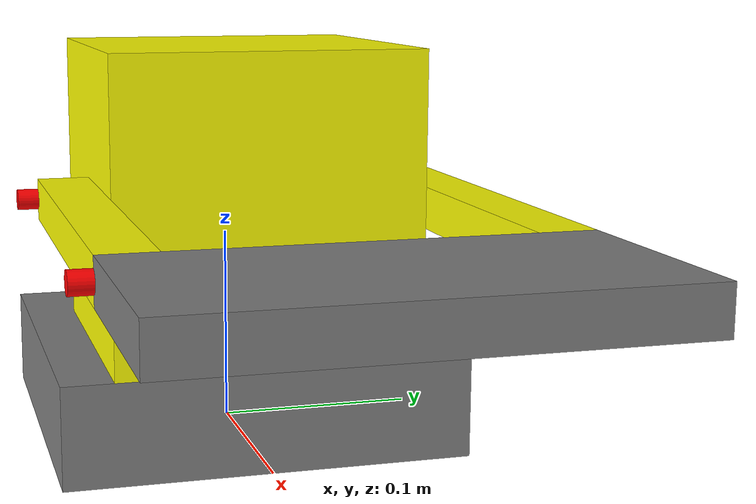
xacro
<?xml version="1.0"?>
<robot name="yelldozer" xmlns:xacro="http://www.ros.org/wiki/xacro">

  <xacro:property name="WHEEL_X"            value="0.20" />
  <xacro:property name="WHEEL_Y"            value="0.20" />
  <xacro:property name="WHEEL_Z"            value="0.05" />

  <xacro:property name="ROBOT_BASE_X"       value="0.15" />
  <xacro:property name="ROBOT_BASE_Y"       value="0.15" />
  <xacro:property name="ROBOT_BASE_Z"       value="0.15" />

  <xacro:property name="GRIPPER_X"          value="0.20" />
  <xacro:property name="GRIPPER_Y"          value="0.20" />
  <xacro:property name="GRIPPER_Z"          value="0.02" />

  <xacro:property name="BUCKET_X"           value="0.10" />
  <xacro:property name="BUCKET_Y"           value="0.20" />
  <xacro:property name="BUCKET_Z"           value="0.02" />

  <material name="red">
    <color rgba="1.0 0.0 0.0 1.0"/>
  </material>
  <material name="green">
    <color rgba="0.0 1.0 0.0 1.0"/>
  </material>
  <material name="yellow">
    <color rgba="1.0 1.0 0.0 1.0"/>
  </material>
  <material name="grey">
    <color rgba="0.5 0.5 0.5 1.0"/>
  </material>
  <material name="white">
    <color rgba="1.0 1.0 1.0 1.0"/>
  </material>

  <link name="base_footprint"/>

  <link name="wheel_link">
    <visual>
      <origin xyz="0 0 0" rpy="0.0 0 0.0"/>
      <geometry>
        <box size="${WHEEL_X} ${WHEEL_Y} ${WHEEL_Z}"/>
      </geometry>
      <material name="grey"/>
    </visual>
    <collision>
      <origin xyz="0 0 0" rpy="0 0 0"/>
      <geometry>
        <box size="${WHEEL_X} ${WHEEL_Y} ${WHEEL_Z}"/>
      </geometry>
    </collision>
  </link>
  <joint name="wheel_joint" type="fixed">
    <parent link="base_footprint"/>
    <child link="wheel_link"/>
    <origin xyz="0 0 ${WHEEL_Z / 2}" rpy="0 0 0"/>
  </joint>

  <link name="base_link">
    <visual>
      <origin xyz="0 0 0" rpy="0.0 0 0.0"/>
      <geometry>
        <box size="${ROBOT_BASE_X} ${ROBOT_BASE_Y} ${ROBOT_BASE_Z}"/>
      </geometry>
      <material name="yellow"/>
    </visual>
    <collision>
      <origin xyz="0 0 0" rpy="0 0 0"/>
      <geometry>
        <box size="${ROBOT_BASE_X} ${ROBOT_BASE_Y} ${ROBOT_BASE_Z}"/>
      </geometry>
    </collision>
  </link>
  <joint name="base_joint" type="fixed">
    <parent link="wheel_link"/>
    <child link="base_link"/>
    <origin xyz="${(WHEEL_X - ROBOT_BASE_X) / 2} 0.0 ${WHEEL_Z / 2 + ROBOT_BASE_Z / 2}" rpy="0 0 0"/>
  </joint>

  <link name="gripper_shaft">
    <visual>
      <origin xyz="0 0 0" rpy="1.57 0 0"/>
      <geometry>
        <cylinder radius="0.005" length="${GRIPPER_Y * 1.1}" />
      </geometry>
      <material name="red"/>
    </visual>
  </link>
  <joint name="gripper_shaft_joint" type="revolute">
    <axis xyz="0 1 0"/>
    <limit effort="1000.0" lower="-1.57" upper="0.0" velocity="0.5"/>
    <origin rpy="0 0 0" xyz="0.0 0.0 0.0"/>
    <parent link="base_link"/>
    <child link="gripper_shaft"/>
  </joint>

  <link name="gripper_first_left">
    <visual>
      <origin xyz="0 0 0" rpy="0 0 0"/>
      <geometry>
        <box size="${GRIPPER_X} ${(GRIPPER_Y - ROBOT_BASE_Y) / 2} ${GRIPPER_Z}"/>
      </geometry>
      <material name="yellow"/>
    </visual>
  </link>
  <joint name="gripper_first_left_joint" type="fixed">
    <axis xyz="0 1 0"/>
    <origin rpy="0 0 0" xyz="${GRIPPER_X / 2} ${(GRIPPER_Y + ROBOT_BASE_Y) / 4} 0.0"/>
    <parent link="gripper_shaft"/>
    <child link="gripper_first_left"/>
  </joint>

  <link name="gripper_first_right">
    <visual>
      <origin xyz="0 0 0" rpy="0 0 0"/>
      <geometry>
        <box size="${GRIPPER_X} ${(GRIPPER_Y - ROBOT_BASE_Y) / 2} ${GRIPPER_Z}"/>
      </geometry>
      <material name="yellow"/>
    </visual>
  </link>
  <joint name="gripper_joint_right" type="fixed">
    <axis xyz="0 1 0"/>
    <origin rpy="0 0 0" xyz="${GRIPPER_X / 2} ${-1 * (GRIPPER_Y + ROBOT_BASE_Y) / 4} 0.0"/>
    <parent link="gripper_shaft"/>
    <child link="gripper_first_right"/>
  </joint>

  <link name="bucket_shaft">
    <visual>
      <origin xyz="0 0 0" rpy="1.57 0 0"/>
      <geometry>
        <cylinder radius="0.005" length="${BUCKET_Y * 1.1}" />
      </geometry>
      <material name="red"/>
    </visual>
  </link>
  <joint name="bucket_shaft_joint" type="revolute">
    <axis xyz="0 1 0"/>
    <limit effort="1000.0" lower="-1.57" upper="+1.57" velocity="0.5"/>
    <origin rpy="0 0 0" xyz="${GRIPPER_X / 2} ${-1 * (GRIPPER_Y + ROBOT_BASE_Y) / 4} 0.0"/>
    <parent link="gripper_first_left"/>
    <child link="bucket_shaft"/>
  </joint>

  <link name="bucket">
    <visual>
      <origin xyz="0 0 0" rpy="0 0 0"/>
      <geometry>
        <box size="${BUCKET_X} ${BUCKET_Y} ${BUCKET_Z}"/>
      </geometry>
      <material name="grey"/>
    </visual>
  </link>
  <joint name="bucket_joint" type="fixed">
    <axis xyz="0 1 0"/>
    <origin rpy="0 0 0" xyz="${BUCKET_X / 2} 0.0 0.0"/>
    <parent link="bucket_shaft"/>
    <child link="bucket"/>
  </joint>

</robot>
